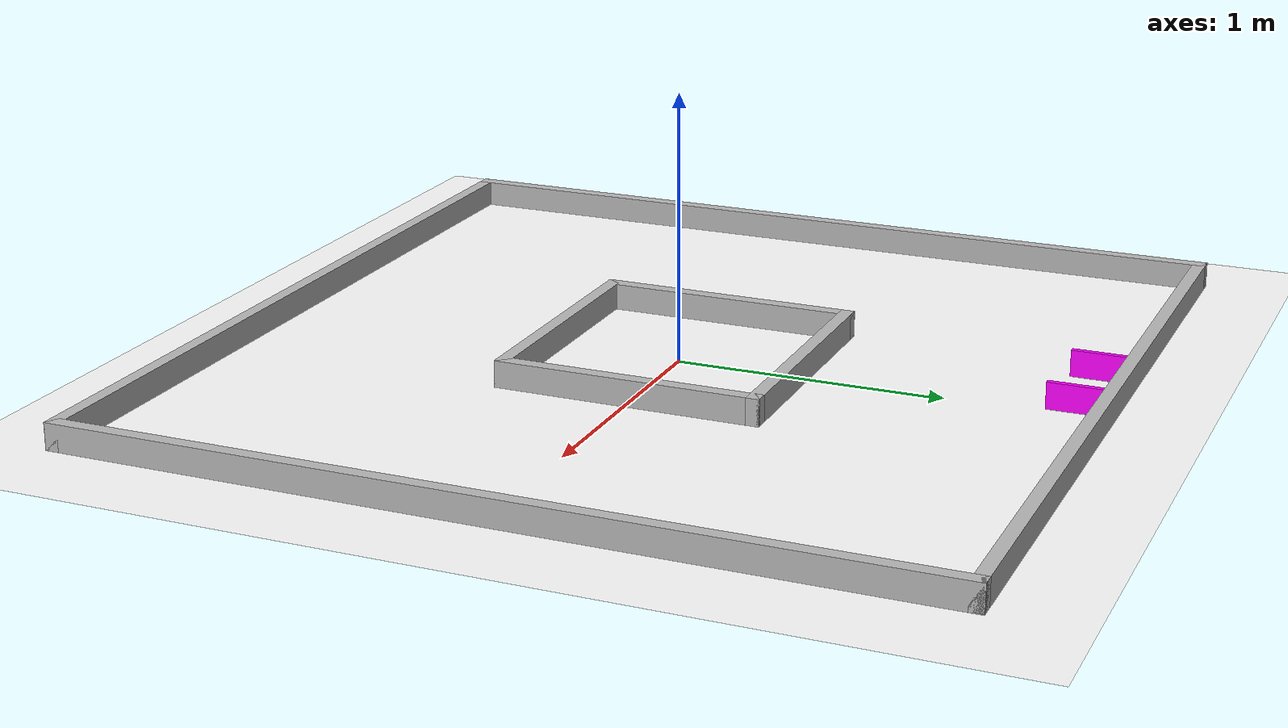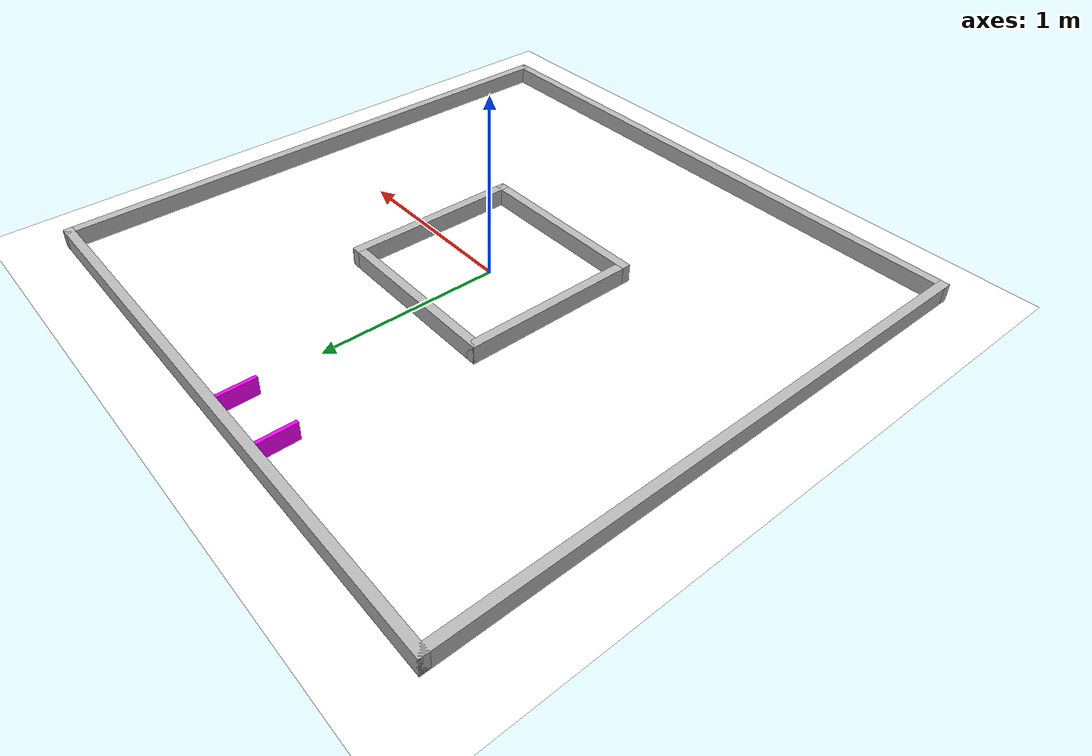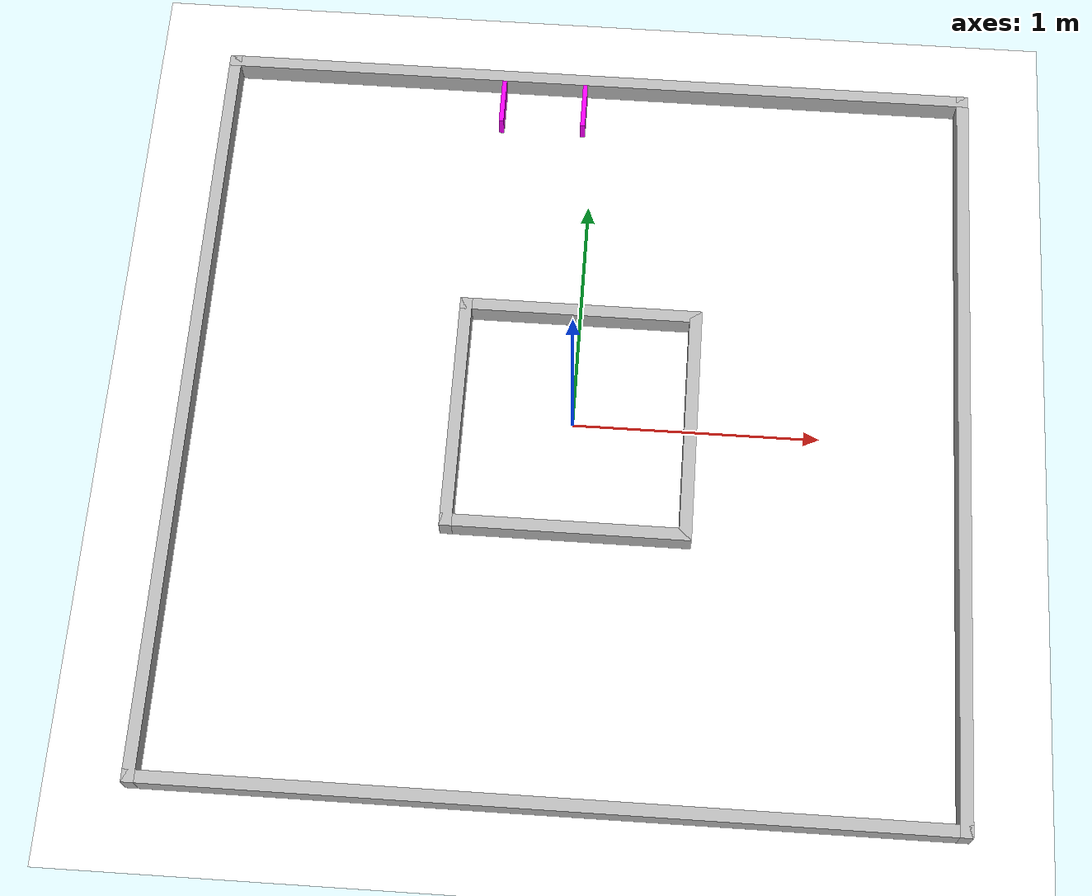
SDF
<?xml version="1.0" ?>
<sdf version="1.8">
  <world name="wro_world">
    <physics name="1ms" type="ignored">
      <max_step_size>0.001</max_step_size>
      <real_time_factor>1.0</real_time_factor>
    </physics>
    <plugin
      filename="libignition-gazebo-physics-system.so"
      name="ignition::gazebo::systems::Physics">
    </plugin>
    <plugin
      filename="libignition-gazebo-user-commands-system.so"
      name="ignition::gazebo::systems::UserCommands">
    </plugin>
    <plugin
      filename="libignition-gazebo-scene-broadcaster-system.so"
      name="ignition::gazebo::systems::SceneBroadcaster">
    </plugin>

    <!--light-->
    <light type="directional" name="light">
      <cast_shadows>true</cast_shadows>
      <pose>0 0 10 0 0 0</pose>
      <diffuse>0.8 0.8 0.8 1</diffuse>
      <specular>0.2 0.2 0.2 1</specular>
      <attenuation>
        <range>1000</range>
        <constant>0.9</constant>
        <linear>0.01</linear>
        <quadratic>0.001</quadratic>
      </attenuation>
      <direction>-0.5 0.1 -0.9</direction>
    </light>

    <!-- Ground Plane with Image Texture -->
    <model name="ground_plane">
      <static>true</static>
      <link name="link">
        <collision name="collision">
          <geometry>
            <plane>
              <normal>0 0 1</normal>
              <size>3.2 3.2</size>
            </plane>
          </geometry>
        </collision>
        <visual name="visual">
          <geometry>
            <plane>
              <normal>0 0 1</normal>
              <size>3.2 3.2</size>
            </plane>
          </geometry>
          <material>
            <ambient>1 1 1 1</ambient>
            <diffuse>1 1 1 1</diffuse>
            <specular>0 0 0 1</specular>
            <emissive>0 0 0 1</emissive>
            <pbr>
              <metal>
                <albedo_map>model://materials/textures/wro_mat.png</albedo_map>
              </metal>
            </pbr>
          </material>
        </visual>
      </link>
    </model>

    <!-- Outer Square Field -->
    <model name="outer_square_field">
      <pose>0 0 0.05 0 0 0</pose>
      <static>true</static>
      <link name="outer_link_1">
        <collision name="outer_collision_1">
          <geometry>
            <box>
              <size>3.2 0.05 0.1</size>
            </box>
          </geometry>
          <pose>0 1.575 0 0 0 0</pose>
        </collision>
        <visual name="outer_visual_1">
          <geometry>
            <box>
              <size>3.2 0.05 0.1</size>
            </box>
          </geometry>
          <pose>0 1.575 0 0 0 0</pose>
        </visual>
      </link>
      <link name="outer_link_2">
        <collision name="outer_collision_2">
          <geometry>
            <box>
              <size>3.2 0.05 0.1</size>
            </box>
          </geometry>
          <pose>0 -1.575 0 0 0 0</pose>
        </collision>
        <visual name="outer_visual_2">
          <geometry>
            <box>
              <size>3.2 0.05 0.1</size>
            </box>
          </geometry>
          <pose>0 -1.575 0 0 0 0</pose>
        </visual>
      </link>
      <link name="outer_link_3">
        <collision name="outer_collision_3">
          <geometry>
            <box>
              <size>0.05 3.2 0.1</size>
            </box>
          </geometry>
          <pose>1.575 0 0 0 0 0</pose>
        </collision>
        <visual name="outer_visual_3">
          <geometry>
            <box>
              <size>0.05 3.2 0.1</size>
            </box>
          </geometry>
          <pose>1.575 0 0 0 0 0</pose>
        </visual>
      </link>
      <link name="outer_link_4">
        <collision name="outer_collision_4">
          <geometry>
            <box>
              <size>0.05 3.2 0.1</size>
            </box>
          </geometry>
          <pose>-1.575 0 0 0 0 0</pose>
        </collision>
        <visual name="outer_visual_4">
          <geometry>
            <box>
              <size>0.05 3.2 0.1</size>
            </box>
          </geometry>
          <pose>-1.575 0 0 0 0 0</pose>
        </visual>
      </link>
    </model>

    <!-- Inner Square Field -->
    <model name="inner_square_field">
      <pose>0 0 0.05 0 0 0</pose>
      <static>true</static>
      <link name="inner_link_1">
        <collision name="inner_collision_1">
          <geometry>
            <box>
              <size>1 0.05 0.1</size>
            </box>
          </geometry>
          <pose>0 0.475 0 0 0 0</pose>
        </collision>
        <visual name="inner_visual_1">
          <geometry>
            <box>
              <size>1 0.05 0.1</size>
            </box>
          </geometry>
          <pose>0 0.475 0 0 0 0</pose>
        </visual>
      </link>
      <link name="inner_link_2">
        <collision name="inner_collision_2">
          <geometry>
            <box>
              <size>1 0.05 0.1</size>
            </box>
          </geometry>
          <pose>0 -0.475 0 0 0 0</pose>
        </collision>
        <visual name="inner_visual_2">
          <geometry>
            <box>
              <size>1 0.05 0.1</size>
            </box>
          </geometry>
          <pose>0 -0.475 0 0 0 0</pose>
        </visual>
      </link>
      <link name="inner_link_3">
        <collision name="inner_collision_3">
          <geometry>
            <box>
              <size>0.05 1 0.1</size>
            </box>
          </geometry>
          <pose>0.475 0 0 0 0 0</pose>
        </collision>
        <visual name="inner_visual_3">
          <geometry>
            <box>
              <size>0.05 1 0.1</size>
            </box>
          </geometry>
          <pose>0.475 0 0 0 0 0</pose>
        </visual>
      </link>
      <link name="inner_link_4">
        <collision name="inner_collision_4">
          <geometry>
            <box>
              <size>0.05 1 0.1</size>
            </box>
          </geometry>
          <pose>-0.475 0 0 0 0 0</pose>
        </collision>
        <visual name="inner_visual_4">
          <geometry>
            <box>
              <size>0.05 1 0.1</size>
            </box>
          </geometry>
          <pose>-0.475 0 0 0 0 0</pose>
        </visual>
      </link>
    </model>

    <!-- Parking lot -->
    <model name="parking_1">
      <pose>-0.4 1.45 0.05 0 0 0</pose>
      <static>true</static>
      <link name="link">
        <collision name="collision">
          <geometry>
            <box>
              <size>0.02 0.2 0.1</size>
            </box>
          </geometry>
        </collision>
        <visual name="visual">
          <geometry>
            <box>
              <size>0.02 0.2 0.1</size>
            </box>
          </geometry>
          <material>
            <ambient>1 0 1 1</ambient>
            <diffuse>1 0 1 1</diffuse>
            <specular>0.5 0.5 0.5 1</specular>
            <emissive>0 0 0 1</emissive>
          </material>
        </visual>
      </link>
    </model>
    <model name="parking_2">
      <pose>-0.05 1.45 0.05 0 0 0</pose>
      <static>true</static>
      <link name="link">
        <collision name="collision">
          <geometry>
            <box>
              <size>0.02 0.2 0.1</size>
            </box>
          </geometry>
        </collision>
        <visual name="visual">
          <geometry>
            <box>
              <size>0.02 0.2 0.1</size>
            </box>
          </geometry>
          <material>
            <ambient>1 0 1 1</ambient>
            <diffuse>1 0 1 1</diffuse>
            <specular>0.5 0.5 0.5 1</specular>
            <emissive>0 0 0 1</emissive>
          </material>
        </visual>
      </link>
    </model>

  </world>
</sdf>
